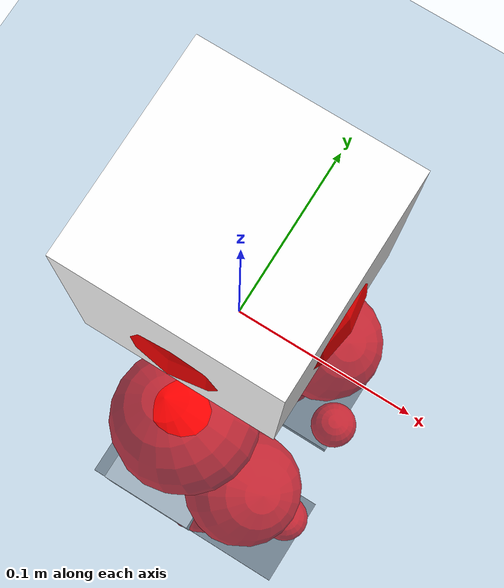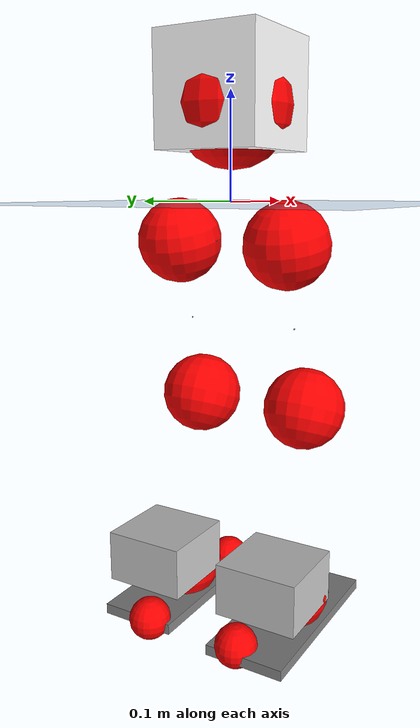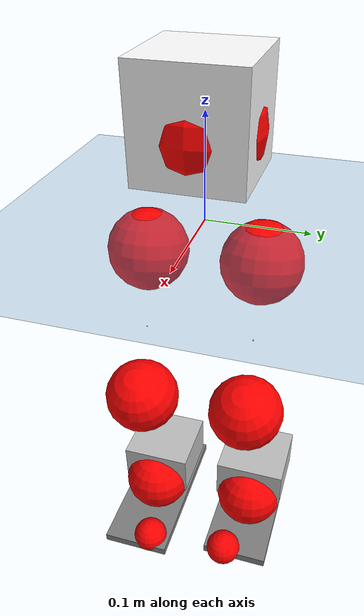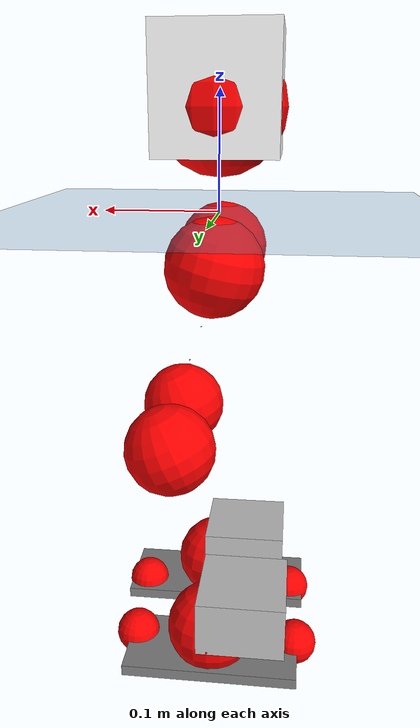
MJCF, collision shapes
<mujoco model="pi_12dof_release_v1">
  <compiler angle="radian" assetdir="assets" balanceinertia="true" inertiafromgeom="false"/>

  <option timestep="0.005" density="1.2" viscosity="2e-05"/>

  <size nkey="1"/>

  <visual>
    <quality shadowsize="8192"/>
    <map shadowclip="0.5"/>
  </visual>

  <default>
    <default class="/">
      <joint armature="0.01" damping="0.01" frictionloss="0.01"/>
      <geom contype="0" conaffinity="0" group="1" solref="-1000 -80"/>
      <site size="0.01 0.005 0.005" group="5"/>
      <general forcelimited="true" biastype="affine" gainprm="20" biasprm="0 -20 -0.5"/>
      <default class="foot">
        <geom size="0.0845 0.036 0.005" type="box" condim="6" group="4" priority="1" friction="0.9 0.2 0.2" solimp="0.015 1 0.005"/>
      </default>
      <default class="reward_collision_sphere">
        <geom group="5" rgba="1 0 0 1"/>
      </default>
    </default>
  </default>

  <asset>
    <texture type="skybox" colorspace="auto" name="//unnamed_texture_0" builtin="gradient" rgb1="0.95 0.95 0.95" rgb2="0.95 0.95 0.95" width="100" height="600"/>
    <texture type="2d" colorspace="auto" name="texplane" builtin="checker" rgb1="0.345 0.575 0.748" rgb2="0.345 0.575 0.748" markrgb="1 1 1" width="512" height="512"/>
    <material name="MatPlane" class="/" texture="texplane" texuniform="true" texrepeat="2 2" specular="0.9"/>
    <mesh name="baselink_1" class="/" file="baselink_1.STL"/>
    <mesh name="r_hip_pitch_link" class="/" file="r_hip_pitch_link.STL"/>
    <mesh name="r_hip_roll_link" class="/" file="r_hip_roll_link.STL"/>
    <mesh name="r_thigh_link" class="/" file="r_thigh_link.STL"/>
    <mesh name="r_calf_link" class="/" file="r_calf_link.STL"/>
    <mesh name="r_ankle_pitch_link" class="/" file="r_ankle_pitch_link.STL"/>
    <mesh name="r_ankle_roll_link" class="/" file="r_ankle_roll_link.STL"/>
    <mesh name="l_hip_pitch_link" class="/" file="l_hip_pitch_link.STL"/>
    <mesh name="l_hip_roll_link" class="/" file="l_hip_roll_link.STL"/>
    <mesh name="l_thigh_link" class="/" file="l_thigh_link.STL"/>
    <mesh name="l_calf_link" class="/" file="l_calf_link.STL"/>
    <mesh name="l_ankle_pitch_link" class="/" file="l_ankle_pitch_link.STL"/>
    <mesh name="l_ankle_roll_link" class="/" file="l_ankle_roll_link.STL"/>
  </asset>

  <worldbody>
    <geom name="floor" class="/" size="100 100 0.125" type="plane" group="0" material="MatPlane"/>
    <light name="toplight_shadow" class="/" pos="0 0 5" dir="0.0990148 0.0990148 -0.990148" type="directional" ambient="0.04 0.04 0.04" diffuse="0.55 0.55 0.55" specular="0.12 0.12 0.12"/>
    <light name="toplight_fill" class="/" pos="0 0 5" dir="0.0990148 0.0990148 -0.990148" type="directional" castshadow="false" ambient="0.04 0.04 0.04" diffuse="0.3 0.3 0.3" specular="0.08 0.08 0.08"/>
    <body name="trunk" pos="-0.000215231 -0.00165048 0.000838023" quat="1 0.000258841 0.000539318 -0.000589748">
      <inertial pos="0.00175187 -0.00306996 0.0505278" quat="0.698036 0.010915 0.0111194 0.715893" mass="2.27652" diaginertia="0.0166051 0.00185965 0.0103287"/>
      <joint name="//unnamed_joint_0" type="free"/>
      <geom name="//unnamed_geom_1" class="/" type="mesh" density="0" rgba="1 1 1 1" mesh="baselink_1"/>
      <geom name="//unnamed_geom_2" class="/" size="0.0510342 0.0510342 0.0510342" pos="0 0 0.0960619" type="box" rgba="1 1 1 1"/>
      <geom name="//unnamed_geom_3" class="reward_collision_sphere" size="0.0561376" pos="0 0 0.0840541"/>
      <site name="imu" class="/" pos="0.00066809 0.0021976 0.00221612" size="0.0102068"/>
      <camera name="track" class="/" pos="0 -1.46856 0" quat="0.707107 0.707107 0 0" mode="trackcom"/>
      <camera name="ego_camera" class="/" pos="0.0845248 0 0.216139" quat="-0.5 -0.5 0.5 0.5"/>
      <body name="r_hip_pitch_link" pos="-0.000279889 -0.016692 -0.0398714" quat="0.992195 -8.90764e-06 -0.124693 -5.721e-06">
        <inertial pos="0.000880253 -0.0438944 0.000170968" quat="-0.0109419 0.706118 -0.0186468 0.707764" mass="0.390605" diaginertia="0.000193916 2.06006e-05 0.000203309"/>
        <joint name="r_hip_pitch_joint" class="/" pos="0 0 0" axis="-0.000729548 -0.999999 0.00146049" range="-1.71943 1.26673" armature="0.0100799" damping="0.0266578" frictionloss="0.0115882"/>
        <geom name="//unnamed_geom_4" class="/" type="mesh" density="0" rgba="0.75294 0.75294 0.75294 1" mesh="r_hip_pitch_link"/>
        <geom name="//unnamed_geom_5" class="/" size="0.000510342 0.000510342 0.000510342" type="box" rgba="0.75294 0.75294 0.75294 1"/>
        <body name="r_hip_roll_link" pos="0.00255379 -0.0393514 2.02106e-06" quat="0.999999 0.00127668 0.000234177 -0.000327447">
          <inertial pos="-0.00268566 0.00187942 -0.071877" quat="0.705111 -0.0797136 -0.082446 0.699762" mass="0.416148" diaginertia="0.000586848 6.1284e-05 0.000320825"/>
          <joint name="r_hip_roll_joint" class="/" pos="0 0 0" axis="-0.999996 0.00283565 0.000565469" stiffness="0.00194096" range="-0.121798 0.488639" armature="0.0114543" damping="0.0221752" frictionloss="0.0102547"/>
          <geom name="//unnamed_geom_6" class="/" type="mesh" density="0" rgba="0.75294 0.75294 0.75294 1" mesh="r_hip_roll_link"/>
          <geom name="//unnamed_geom_7" class="/" size="0.000510342 0.000510342 0.000510342" type="box" rgba="0.75294 0.75294 0.75294 1"/>
          <geom name="//unnamed_geom_8" class="reward_collision_sphere" size="0.0408273"/>
          <body name="r_thigh_link" pos="0.000657096 0.0010136 -0.0830156" quat="1 -0.00031166 -0.000148029 0.000156829">
            <inertial pos="-0.00210754 -0.000694966 -0.0594702" quat="0.737596 0.675237 0.0018785 0.0019254" mass="0.116778" diaginertia="0.000223786 2.05192e-05 0.000142278"/>
            <joint name="r_thigh_joint" class="/" pos="0 0 0" axis="0.00778507 -0.00685062 -0.999946" range="-0.35539 0.540148" armature="0.0115428" damping="0" frictionloss="0.0115868"/>
            <geom name="//unnamed_geom_9" class="/" type="mesh" density="0" rgba="0.75294 0.75294 0.75294 1" mesh="r_thigh_link"/>
            <geom name="//unnamed_geom_10" class="/" size="0.000510342 0.000510342 0.000510342" type="box" rgba="0.75294 0.75294 0.75294 1"/>
            <body name="r_calf_link" pos="-0.00231617 -0.0034616 -0.0850166" quat="0.947584 0.000375503 0.319505 0.000230681">
              <inertial pos="0.000922704 -0.000960568 -0.0836731" quat="0.999904 -0.00415369 0.0130865 0.00175021" mass="0.873276" diaginertia="0.0062777 0.000746521 0.000434276"/>
              <joint name="r_calf_joint" class="/" pos="0 0 0" axis="0.000469309 -0.999902 -0.0140261" range="-1.66394 0.665924" armature="0.0103414" damping="0.0069069" frictionloss="0.0115773"/>
              <geom name="//unnamed_geom_11" class="/" type="mesh" density="0" rgba="0.75294 0.75294 0.75294 1" mesh="r_calf_link"/>
              <geom name="//unnamed_geom_12" class="/" size="0.000510342 0.000510342 0.000510342" type="box" rgba="0.75294 0.75294 0.75294 1"/>
              <geom name="//unnamed_geom_13" class="reward_collision_sphere" size="0.0408273"/>
              <body name="r_ankle_pitch_link" pos="0.000498848 -0.00207374 -0.170476" quat="0.980061 -3.7371e-05 -0.198698 -7.36926e-07">
                <inertial pos="0.005879 0.00129952 0.00240302" quat="0.00106893 0.705897 -0.00415796 0.708302" mass="0.184756" diaginertia="0.000547378 4.73351e-05 0.000298988"/>
                <joint name="r_ankle_pitch_joint" class="/" pos="0 0 0" axis="-0.00401608 -0.999977 0.00552681" range="-1.33149 0.447183" armature="0.011375" damping="0.0106044" frictionloss="0.0115534"/>
                <geom name="//unnamed_geom_14" class="/" type="mesh" density="0" rgba="0.75294 0.75294 0.75294 1" mesh="r_ankle_pitch_link"/>
                <geom name="//unnamed_geom_15" class="/" size="0.0398067 0.0408273 0.0255171" type="box" rgba="0.75294 0.75294 0.75294 1"/>
                <body name="r_ankle_roll_link" pos="0.0873577 -0.000718977 0.00263575" quat="1 0.000167505 -0.000330785 -0.00028115">
                  <inertial pos="-0.0283246 0.00169312 -0.0173395" quat="0.560281 0.430497 0.434268 0.55872" mass="0.569215" diaginertia="0.00213489 0.0002328 0.000719379"/>
                  <joint name="r_ankle_roll_joint" class="/" pos="0 0 0" axis="-0.999932 0.00373913 -0.0110494" stiffness="0.00760432" range="-0.0977727 0.198613" armature="0.0101548" damping="0.0167816" frictionloss="0.00979259"/>
                  <geom name="//unnamed_geom_16" class="/" type="mesh" density="0" rgba="0.75294 0.75294 0.75294 1" mesh="r_ankle_roll_link"/>
                  <geom name="//unnamed_geom_17" class="/" type="mesh" rgba="0.75294 0.75294 0.75294 1" mesh="r_ankle_roll_link"/>
                  <geom name="right_foot" class="foot" size="0.0916114 0.0392022 0.00501649" pos="-0.0574768 0 -0.052834"/>
                  <geom name="//unnamed_geom_19" class="reward_collision_sphere" size="0.0408273" pos="-0.0563498 0 -0.0240155"/>
                  <geom name="//unnamed_geom_20" class="reward_collision_sphere" size="0.0204137" pos="0.016905 0.0146856 -0.0480309"/>
                  <geom name="//unnamed_geom_21" class="reward_collision_sphere" size="0.0204137" pos="-0.13524 0.0146856 -0.0480309"/>
                  <site name="right_foot" class="foot" pos="-0.0574768 0 -0.052834" size="0.0102068"/>
                </body>
              </body>
            </body>
          </body>
        </body>
      </body>
      <body name="l_hip_pitch_link" pos="4.45423e-05 0.0177431 -0.0368001" quat="0.992186 6.10097e-05 -0.124766 0.000406423">
        <inertial pos="-0.000160328 0.0406602 0.00122125" quat="-0.0335456 0.705461 0.0312856 0.707263" mass="0.402427" diaginertia="0.000237253 2.23949e-05 0.000255547"/>
        <joint name="l_hip_pitch_joint" class="/" pos="0 0 0" axis="-0.000971534 0.999994 -0.00321545" stiffness="0.00889375" range="-1.25855 1.8049" armature="0.00982666" damping="0.0137993" frictionloss="0.0102713"/>
        <geom name="//unnamed_geom_22" class="/" type="mesh" density="0" rgba="0.75294 0.75294 0.75294 1" mesh="l_hip_pitch_link"/>
        <geom name="//unnamed_geom_23" class="/" size="0.000510342 0.000510342 0.000510342" type="box" rgba="0.75294 0.75294 0.75294 1"/>
        <body name="l_hip_roll_link" pos="-0.00149419 0.0406265 -0.000776136" quat="0.999999 0.000489033 0.000250966 -0.00122201">
          <inertial pos="-0.0037988 0.00251316 -0.0737912" quat="0.705832 -0.080181 -0.0763318 0.699676" mass="0.398413" diaginertia="0.00059824 5.98631e-05 0.000330676"/>
          <joint name="l_hip_roll_joint" class="/" pos="0 0 0" axis="-0.999976 4.48662e-05 0.00688443" range="-0.508665 0.105223" armature="0.0115385" damping="0.00897061" frictionloss="0.00974166"/>
          <geom name="//unnamed_geom_24" class="/" type="mesh" density="0" rgba="0.75294 0.75294 0.75294 1" mesh="l_hip_roll_link"/>
          <geom name="//unnamed_geom_25" class="/" size="0.000510342 0.000510342 0.000510342" type="box" rgba="0.75294 0.75294 0.75294 1"/>
          <geom name="//unnamed_geom_26" class="reward_collision_sphere" size="0.0408273"/>
          <body name="l_thigh_link" pos="0.000461009 -9.54953e-05 -0.0813824" quat="1 0.000165417 0.000153704 -0.000304128">
            <inertial pos="0.000829509 0.000983582 -0.05587" quat="0.674758 0.738037 -0.0014619 0.000208281" mass="0.119867" diaginertia="0.000219392 1.94869e-05 0.000139042"/>
            <joint name="l_thigh_joint" class="/" pos="0 0 0" axis="0.000485098 -0.00230285 -0.999997" stiffness="0.000763916" range="-0.614794 0.282009" armature="0.0097161" damping="0" frictionloss="0.00983023"/>
            <geom name="//unnamed_geom_27" class="/" type="mesh" density="0" rgba="0.75294 0.75294 0.75294 1" mesh="l_thigh_link"/>
            <geom name="//unnamed_geom_28" class="/" size="0.000510342 0.000510342 0.000510342" type="box" rgba="0.75294 0.75294 0.75294 1"/>
            <body name="l_calf_link" pos="-0.0029592 0.000469058 -0.085629" quat="0.947981 -0.000447035 0.318327 -0.000601962">
              <inertial pos="0.000303501 0.00299426 -0.0823497" quat="0.999984 0.00308201 -0.000276355 0.00475139" mass="0.857361" diaginertia="0.00634833 0.000734376 0.00044673"/>
              <joint name="l_calf_joint" class="/" pos="0 0 0" axis="0.000946345 0.999991 0.00408081" range="-0.599402 1.66514" armature="0.0101309" damping="0.00796242" frictionloss="0.00971641"/>
              <geom name="//unnamed_geom_29" class="/" type="mesh" density="0" rgba="0.75294 0.75294 0.75294 1" mesh="l_calf_link"/>
              <geom name="//unnamed_geom_30" class="/" size="0.000510342 0.000510342 0.000510342" type="box" rgba="0.75294 0.75294 0.75294 1"/>
              <geom name="//unnamed_geom_31" class="reward_collision_sphere" size="0.0408273"/>
              <body name="l_ankle_pitch_link" pos="-0.00160551 0.00322744 -0.167668" quat="0.980069 0.000117168 -0.198658 -0.000122884">
                <inertial pos="0.0051219 -0.00290924 0.000942794" quat="-0.0053727 0.705716 0.00224584 0.708471" mass="0.182521" diaginertia="0.000553648 4.72505e-05 0.000289284"/>
                <joint name="l_ankle_pitch_joint" class="/" pos="0 0 0" axis="-5.79375e-05 1 0.000482734" stiffness="0.0105183" range="-0.483084 1.29511" armature="0.00894587" damping="0.0216036" frictionloss="0.00952241"/>
                <geom name="//unnamed_geom_32" class="/" type="mesh" density="0" rgba="0.75294 0.75294 0.75294 1" mesh="l_ankle_pitch_link"/>
                <geom name="//unnamed_geom_33" class="/" size="0.0398067 0.0408273 0.0255171" type="box" rgba="0.75294 0.75294 0.75294 1"/>
                <body name="l_ankle_roll_link" pos="0.0860243 0.000191858 0.000248956" quat="1 -3.30804e-06 -1.64977e-05 2.99634e-05">
                  <inertial pos="-0.0288009 -0.000537725 -0.0183047" quat="0.560766 0.430564 0.433853 0.558505" mass="0.564048" diaginertia="0.00203741 0.000221745 0.00070929"/>
                  <joint name="l_ankle_roll_joint" class="/" pos="0 0 0" axis="-0.999999 -0.000813763 0.00118478" range="-0.0995994 0.149897" armature="0.0105881" damping="0" frictionloss="0.0104562"/>
                  <geom name="//unnamed_geom_34" class="/" type="mesh" density="0" rgba="0.75294 0.75294 0.75294 1" mesh="l_ankle_roll_link"/>
                  <geom name="//unnamed_geom_35" class="/" type="mesh" rgba="0.75294 0.75294 0.75294 1" mesh="l_ankle_roll_link"/>
                  <geom name="left_foot" class="foot" size="0.0800905 0.0382121 0.00510046" pos="-0.0574768 0 -0.052834"/>
                  <geom name="//unnamed_geom_37" class="reward_collision_sphere" size="0.0408273" pos="-0.0563498 0 -0.0240155"/>
                  <geom name="//unnamed_geom_38" class="reward_collision_sphere" size="0.0204137" pos="0.016905 -0.0146856 -0.0480309"/>
                  <geom name="//unnamed_geom_39" class="reward_collision_sphere" size="0.0204137" pos="-0.13524 -0.0146856 -0.0480309"/>
                  <site name="left_foot" class="foot" pos="-0.0574768 0 -0.052834" size="0.0102068"/>
                </body>
              </body>
            </body>
          </body>
        </body>
      </body>
    </body>
  </worldbody>

  <contact>
    <pair class="/" geom1="floor" geom2="right_foot" name="//unnamed_contact_1"/>
    <pair class="/" geom1="floor" geom2="left_foot" name="//unnamed_contact_0"/>
  </contact>

  <actuator>
    <general name="r_hip_pitch_joint" class="/" joint="r_hip_pitch_joint" forcerange="-21.6003 21.6003" gainprm="20.3166" biasprm="0 -20.3166 -0.512094"/>
    <general name="r_hip_roll_joint" class="/" joint="r_hip_roll_joint" forcerange="-23.5919 23.5919" gainprm="20.3166" biasprm="0 -20.3166 -0.512094"/>
    <general name="r_thigh_joint" class="/" joint="r_thigh_joint" forcerange="-21.4632 21.4632" gainprm="20.3166" biasprm="0 -20.3166 -0.512094"/>
    <general name="r_calf_joint" class="/" joint="r_calf_joint" forcerange="-21.653 21.653" gainprm="20.3166" biasprm="0 -20.3166 -0.512094"/>
    <general name="r_ankle_pitch_joint" class="/" joint="r_ankle_pitch_joint" forcerange="-21.3893 21.3893" gainprm="20.3166" biasprm="0 -20.3166 -0.512094"/>
    <general name="r_ankle_roll_joint" class="/" joint="r_ankle_roll_joint" forcerange="-23.146 23.146" gainprm="20.3166" biasprm="0 -20.3166 -0.512094"/>
    <general name="l_hip_pitch_joint" class="/" joint="l_hip_pitch_joint" forcerange="-21.7172 21.7172" gainprm="20.3166" biasprm="0 -20.3166 -0.512094"/>
    <general name="l_hip_roll_joint" class="/" joint="l_hip_roll_joint" forcerange="-21.7283 21.7283" gainprm="20.3166" biasprm="0 -20.3166 -0.512094"/>
    <general name="l_thigh_joint" class="/" joint="l_thigh_joint" forcerange="-21.857 21.857" gainprm="20.3166" biasprm="0 -20.3166 -0.512094"/>
    <general name="l_calf_joint" class="/" joint="l_calf_joint" forcerange="-20.9872 20.9872" gainprm="20.3166" biasprm="0 -20.3166 -0.512094"/>
    <general name="l_ankle_pitch_joint" class="/" joint="l_ankle_pitch_joint" forcerange="-20.9588 20.9588" gainprm="20.3166" biasprm="0 -20.3166 -0.512094"/>
    <general name="l_ankle_roll_joint" class="/" joint="l_ankle_roll_joint" forcerange="-19.77 19.77" gainprm="20.3166" biasprm="0 -20.3166 -0.512094"/>
  </actuator>

  <sensor>
    <gyro site="imu" name="imu_angular_velocity"/>
    <velocimeter site="imu" name="imu_linear_velocity"/>
    <framelinvel objtype="site" objname="left_foot" name="left_foot_global_linear_velocity"/>
    <framelinvel objtype="site" objname="right_foot" name="right_foot_global_linear_velocity"/>
  </sensor>

  <keyframe>
    <key name="home" qpos="0 0 0.291 1 0 0 0 0.4 0 0 -0.8 0.4 0 -0.4 0 0 0.8 -0.4 0"/>
  </keyframe>
</mujoco>
